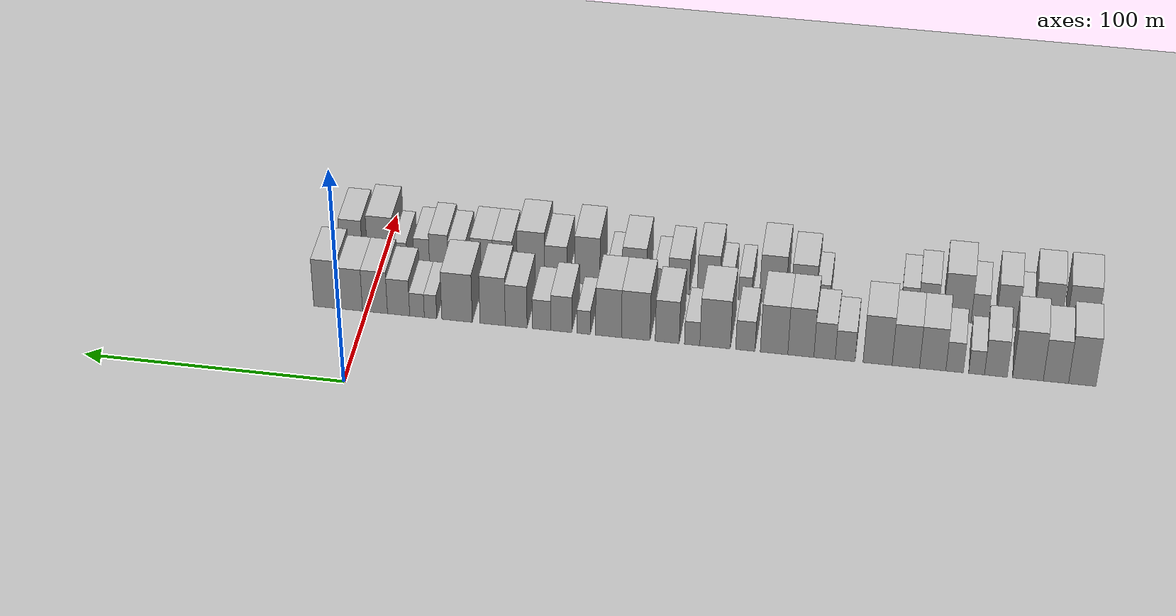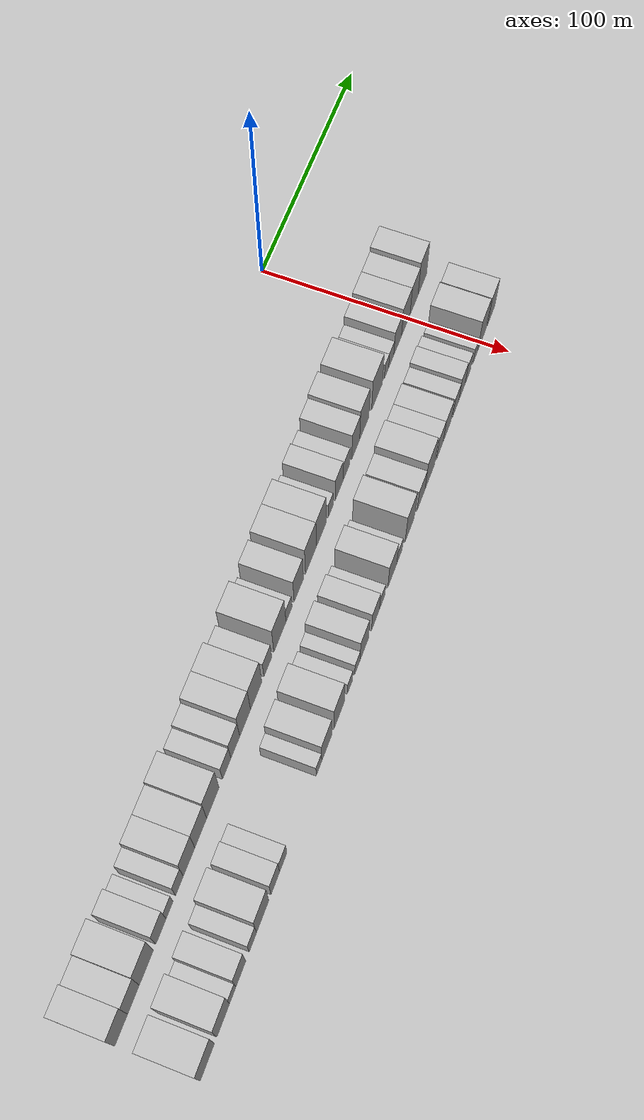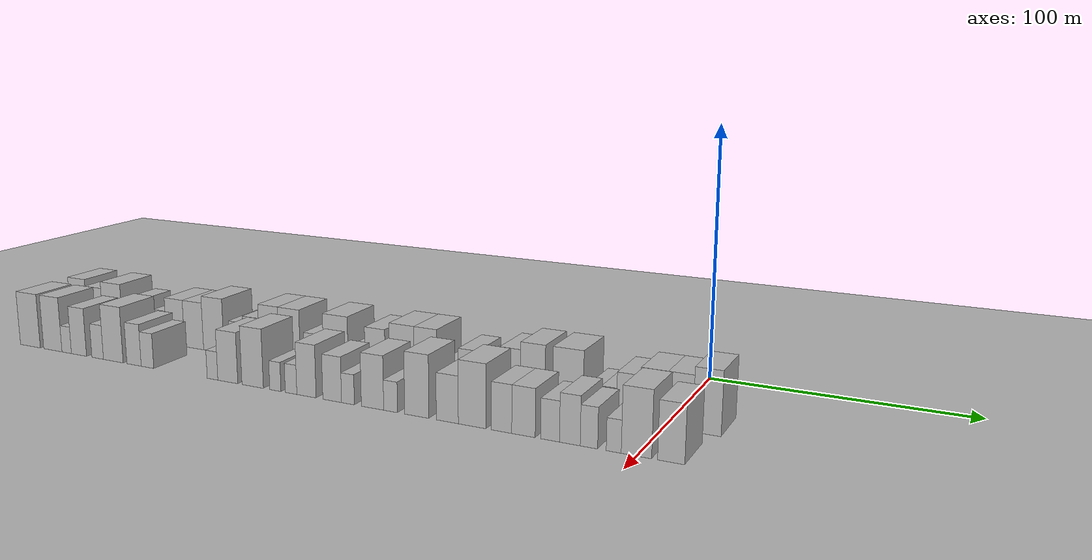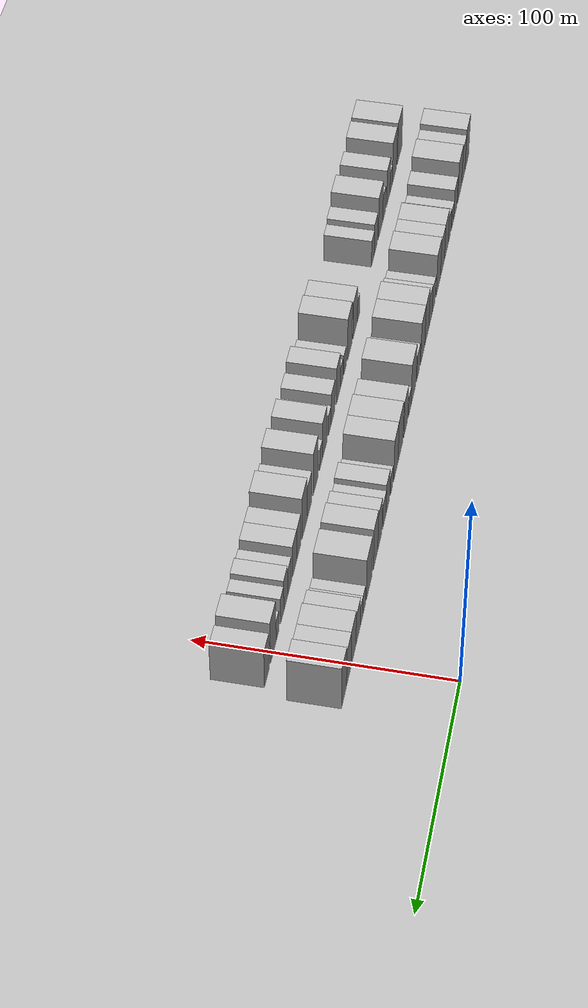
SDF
<sdf version="1.6">
 <world name="default">
  <include><name>ground_plane_1</name><uri>model://HANNAS_ground_plane</uri></include>
  <include>
   <name>ground_plane_2</name>
   <uri>model://HANNAS_ground_plane</uri>
   <pose>100 0 0  0 0 0</pose>
  </include>
  <model name="building_1">
   <static>1</static>
   <pose>50.0000 -272.9200 0 0.000000 0.000000 0.000000</pose>
   <link name="link">
    <pose>0 0 12.00 0 0 0</pose>
    <collision name="collision"><geometry><box><size>20.0000 10.1599 24.0000</size></box></geometry></collision>
    <visual name="visual">
     <cast_shadows>0</cast_shadows>
     <geometry><box><size>20.0000 10.1599 24.0000</size></box></geometry>
     <material>
      <script>
       <uri>model://HANNAS_wall/materials/scripts</uri>
       <uri>model://HANNAS_wall/materials/textures</uri>
       <name>vrc/HANNAS_wall</name>
      </script>
     </material>
    </visual>
   </link>
  </model>
  <model name="building_2">
   <static>1</static>
   <pose>50.0000 -263.1600 0 0.000000 0.000000 0.000000</pose>
   <link name="link">
    <pose>0 0 10.50 0 0 0</pose>
    <collision name="collision"><geometry><box><size>20.0000 9.3602 21.0000</size></box></geometry></collision>
    <visual name="visual">
     <cast_shadows>0</cast_shadows>
     <geometry><box><size>20.0000 9.3602 21.0000</size></box></geometry>
     <material>
      <script>
       <uri>model://HANNAS_wall/materials/scripts</uri>
       <uri>model://HANNAS_wall/materials/textures</uri>
       <name>vrc/HANNAS_wall</name>
      </script>
     </material>
    </visual>
   </link>
  </model>
  <model name="building_3">
   <static>1</static>
   <pose>50.0000 -252.7871 0 0.000000 0.000000 0.000000</pose>
   <link name="link">
    <pose>0 0 12.00 0 0 0</pose>
    <collision name="collision"><geometry><box><size>20.0000 11.3856 24.0000</size></box></geometry></collision>
    <visual name="visual">
     <cast_shadows>0</cast_shadows>
     <geometry><box><size>20.0000 11.3856 24.0000</size></box></geometry>
     <material>
      <script>
       <uri>model://HANNAS_wall/materials/scripts</uri>
       <uri>model://HANNAS_wall/materials/textures</uri>
       <name>vrc/HANNAS_wall</name>
      </script>
     </material>
    </visual>
   </link>
  </model>
  <model name="building_4">
   <static>1</static>
   <pose>50.0000 -240.8640 0 0.000000 0.000000 0.000000</pose>
   <link name="link">
    <pose>0 0 9.00 0 0 0</pose>
    <collision name="collision"><geometry><box><size>20.0000 8.4605 18.0000</size></box></geometry></collision>
    <visual name="visual">
     <cast_shadows>0</cast_shadows>
     <geometry><box><size>20.0000 8.4605 18.0000</size></box></geometry>
     <material>
      <script>
       <uri>model://HANNAS_wall/materials/scripts</uri>
       <uri>model://HANNAS_wall/materials/textures</uri>
       <name>vrc/HANNAS_wall</name>
      </script>
     </material>
    </visual>
   </link>
  </model>
  <model name="building_5">
   <static>1</static>
   <pose>50.0000 -233.6953 0 0.000000 0.000000 0.000000</pose>
   <link name="link">
    <pose>0 0 6.00 0 0 0</pose>
    <collision name="collision"><geometry><box><size>20.0000 5.8770 12.0000</size></box></geometry></collision>
    <visual name="visual">
     <cast_shadows>0</cast_shadows>
     <geometry><box><size>20.0000 5.8770 12.0000</size></box></geometry>
     <material>
      <script>
       <uri>model://HANNAS_wall/materials/scripts</uri>
       <uri>model://HANNAS_wall/materials/textures</uri>
       <name>vrc/HANNAS_wall</name>
      </script>
     </material>
    </visual>
   </link>
  </model>
  <model name="building_6">
   <static>1</static>
   <pose>50.0000 -225.4794 0 0.000000 0.000000 0.000000</pose>
   <link name="link">
    <pose>0 0 7.50 0 0 0</pose>
    <collision name="collision"><geometry><box><size>20.0000 6.5549 15.0000</size></box></geometry></collision>
    <visual name="visual">
     <cast_shadows>0</cast_shadows>
     <geometry><box><size>20.0000 6.5549 15.0000</size></box></geometry>
     <material>
      <script>
       <uri>model://HANNAS_wall/materials/scripts</uri>
       <uri>model://HANNAS_wall/materials/textures</uri>
       <name>vrc/HANNAS_wall</name>
      </script>
     </material>
    </visual>
   </link>
  </model>
  <model name="building_7">
   <static>1</static>
   <pose>50.0000 -217.2844 0 0.000000 0.000000 0.000000</pose>
   <link name="link">
    <pose>0 0 10.50 0 0 0</pose>
    <collision name="collision"><geometry><box><size>20.0000 9.8351 21.0000</size></box></geometry></collision>
    <visual name="visual">
     <cast_shadows>0</cast_shadows>
     <geometry><box><size>20.0000 9.8351 21.0000</size></box></geometry>
     <material>
      <script>
       <uri>model://HANNAS_wall/materials/scripts</uri>
       <uri>model://HANNAS_wall/materials/textures</uri>
       <name>vrc/HANNAS_wall</name>
      </script>
     </material>
    </visual>
   </link>
  </model>
  <model name="building_8">
   <static>1</static>
   <pose>50.0000 -207.2221 0 0.000000 0.000000 0.000000</pose>
   <link name="link">
    <pose>0 0 10.50 0 0 0</pose>
    <collision name="collision"><geometry><box><size>20.0000 10.2895 21.0000</size></box></geometry></collision>
    <visual name="visual">
     <cast_shadows>0</cast_shadows>
     <geometry><box><size>20.0000 10.2895 21.0000</size></box></geometry>
     <material>
      <script>
       <uri>model://HANNAS_wall/materials/scripts</uri>
       <uri>model://HANNAS_wall/materials/textures</uri>
       <name>vrc/HANNAS_wall</name>
      </script>
     </material>
    </visual>
   </link>
  </model>
  <model name="building_9">
   <static>1</static>
   <pose>50.0000 -196.6177 0 0.000000 0.000000 0.000000</pose>
   <link name="link">
    <pose>0 0 12.00 0 0 0</pose>
    <collision name="collision"><geometry><box><size>20.0000 10.9194 24.0000</size></box></geometry></collision>
    <visual name="visual">
     <cast_shadows>0</cast_shadows>
     <geometry><box><size>20.0000 10.9194 24.0000</size></box></geometry>
     <material>
      <script>
       <uri>model://HANNAS_wall/materials/scripts</uri>
       <uri>model://HANNAS_wall/materials/textures</uri>
       <name>vrc/HANNAS_wall</name>
      </script>
     </material>
    </visual>
   </link>
  </model>
  <model name="building_10">
   <static>1</static>
   <pose>50.0000 -184.4147 0 0.000000 0.000000 0.000000</pose>
   <link name="link">
    <pose>0 0 7.50 0 0 0</pose>
    <collision name="collision"><geometry><box><size>20.0000 7.4866 15.0000</size></box></geometry></collision>
    <visual name="visual">
     <cast_shadows>0</cast_shadows>
     <geometry><box><size>20.0000 7.4866 15.0000</size></box></geometry>
     <material>
      <script>
       <uri>model://HANNAS_wall/materials/scripts</uri>
       <uri>model://HANNAS_wall/materials/textures</uri>
       <name>vrc/HANNAS_wall</name>
      </script>
     </material>
    </visual>
   </link>
  </model>
  <model name="building_11">
   <static>1</static>
   <pose>50.0000 -176.6504 0 0.000000 0.000000 0.000000</pose>
   <link name="link">
    <pose>0 0 9.00 0 0 0</pose>
    <collision name="collision"><geometry><box><size>20.0000 8.0421 18.0000</size></box></geometry></collision>
    <visual name="visual">
     <cast_shadows>0</cast_shadows>
     <geometry><box><size>20.0000 8.0421 18.0000</size></box></geometry>
     <material>
      <script>
       <uri>model://HANNAS_wall/materials/scripts</uri>
       <uri>model://HANNAS_wall/materials/textures</uri>
       <name>vrc/HANNAS_wall</name>
      </script>
     </material>
    </visual>
   </link>
  </model>
  <model name="building_12">
   <static>1</static>
   <pose>50.0000 -167.6863 0 0.000000 0.000000 0.000000</pose>
   <link name="link">
    <pose>0 0 12.00 0 0 0</pose>
    <collision name="collision"><geometry><box><size>20.0000 9.8860 24.0000</size></box></geometry></collision>
    <visual name="visual">
     <cast_shadows>0</cast_shadows>
     <geometry><box><size>20.0000 9.8860 24.0000</size></box></geometry>
     <material>
      <script>
       <uri>model://HANNAS_wall/materials/scripts</uri>
       <uri>model://HANNAS_wall/materials/textures</uri>
       <name>vrc/HANNAS_wall</name>
      </script>
     </material>
    </visual>
   </link>
  </model>
  <model name="building_13">
   <static>1</static>
   <pose>50.0000 -157.5218 0 0.000000 0.000000 0.000000</pose>
   <link name="link">
    <pose>0 0 12.00 0 0 0</pose>
    <collision name="collision"><geometry><box><size>20.0000 10.4430 24.0000</size></box></geometry></collision>
    <visual name="visual">
     <cast_shadows>0</cast_shadows>
     <geometry><box><size>20.0000 10.4430 24.0000</size></box></geometry>
     <material>
      <script>
       <uri>model://HANNAS_wall/materials/scripts</uri>
       <uri>model://HANNAS_wall/materials/textures</uri>
       <name>vrc/HANNAS_wall</name>
      </script>
     </material>
    </visual>
   </link>
  </model>
  <model name="building_14">
   <static>1</static>
   <pose>50.0000 -146.6202 0 0.000000 0.000000 0.000000</pose>
   <link name="link">
    <pose>0 0 7.50 0 0 0</pose>
    <collision name="collision"><geometry><box><size>20.0000 7.3601 15.0000</size></box></geometry></collision>
    <visual name="visual">
     <cast_shadows>0</cast_shadows>
     <geometry><box><size>20.0000 7.3601 15.0000</size></box></geometry>
     <material>
      <script>
       <uri>model://HANNAS_wall/materials/scripts</uri>
       <uri>model://HANNAS_wall/materials/textures</uri>
       <name>vrc/HANNAS_wall</name>
      </script>
     </material>
    </visual>
   </link>
  </model>
  <model name="building_15">
   <static>1</static>
   <pose>50.0000 -135.1217 0 0.000000 0.000000 0.000000</pose>
   <link name="link">
    <pose>0 0 12.00 0 0 0</pose>
    <collision name="collision"><geometry><box><size>20.0000 11.6370 24.0000</size></box></geometry></collision>
    <visual name="visual">
     <cast_shadows>0</cast_shadows>
     <geometry><box><size>20.0000 11.6370 24.0000</size></box></geometry>
     <material>
      <script>
       <uri>model://HANNAS_wall/materials/scripts</uri>
       <uri>model://HANNAS_wall/materials/textures</uri>
       <name>vrc/HANNAS_wall</name>
      </script>
     </material>
    </visual>
   </link>
  </model>
  <model name="building_16">
   <static>1</static>
   <pose>50.0000 -126.3583 0 0.000000 0.000000 0.000000</pose>
   <link name="link">
    <pose>0 0 6.00 0 0 0</pose>
    <collision name="collision"><geometry><box><size>20.0000 5.8898 12.0000</size></box></geometry></collision>
    <visual name="visual">
     <cast_shadows>0</cast_shadows>
     <geometry><box><size>20.0000 5.8898 12.0000</size></box></geometry>
     <material>
      <script>
       <uri>model://HANNAS_wall/materials/scripts</uri>
       <uri>model://HANNAS_wall/materials/textures</uri>
       <name>vrc/HANNAS_wall</name>
      </script>
     </material>
    </visual>
   </link>
  </model>
  <model name="building_17">
   <static>1</static>
   <pose>50.0000 -116.8223 0 0.000000 0.000000 0.000000</pose>
   <link name="link">
    <pose>0 0 10.50 0 0 0</pose>
    <collision name="collision"><geometry><box><size>20.0000 9.1821 21.0000</size></box></geometry></collision>
    <visual name="visual">
     <cast_shadows>0</cast_shadows>
     <geometry><box><size>20.0000 9.1821 21.0000</size></box></geometry>
     <material>
      <script>
       <uri>model://HANNAS_wall/materials/scripts</uri>
       <uri>model://HANNAS_wall/materials/textures</uri>
       <name>vrc/HANNAS_wall</name>
      </script>
     </material>
    </visual>
   </link>
  </model>
  <model name="building_18">
   <static>1</static>
   <pose>50.0000 -104.7328 0 0.000000 0.000000 0.000000</pose>
   <link name="link">
    <pose>0 0 12.00 0 0 0</pose>
    <collision name="collision"><geometry><box><size>20.0000 10.9970 24.0000</size></box></geometry></collision>
    <visual name="visual">
     <cast_shadows>0</cast_shadows>
     <geometry><box><size>20.0000 10.9970 24.0000</size></box></geometry>
     <material>
      <script>
       <uri>model://HANNAS_wall/materials/scripts</uri>
       <uri>model://HANNAS_wall/materials/textures</uri>
       <name>vrc/HANNAS_wall</name>
      </script>
     </material>
    </visual>
   </link>
  </model>
  <model name="building_19">
   <static>1</static>
   <pose>50.0000 -94.2725 0 0.000000 0.000000 0.000000</pose>
   <link name="link">
    <pose>0 0 12.00 0 0 0</pose>
    <collision name="collision"><geometry><box><size>20.0000 9.9236 24.0000</size></box></geometry></collision>
    <visual name="visual">
     <cast_shadows>0</cast_shadows>
     <geometry><box><size>20.0000 9.9236 24.0000</size></box></geometry>
     <material>
      <script>
       <uri>model://HANNAS_wall/materials/scripts</uri>
       <uri>model://HANNAS_wall/materials/textures</uri>
       <name>vrc/HANNAS_wall</name>
      </script>
     </material>
    </visual>
   </link>
  </model>
  <model name="building_20">
   <static>1</static>
   <pose>50.0000 -84.7162 0 0.000000 0.000000 0.000000</pose>
   <link name="link">
    <pose>0 0 6.00 0 0 0</pose>
    <collision name="collision"><geometry><box><size>20.0000 5.1888 12.0000</size></box></geometry></collision>
    <visual name="visual">
     <cast_shadows>0</cast_shadows>
     <geometry><box><size>20.0000 5.1888 12.0000</size></box></geometry>
     <material>
      <script>
       <uri>model://HANNAS_wall/materials/scripts</uri>
       <uri>model://HANNAS_wall/materials/textures</uri>
       <name>vrc/HANNAS_wall</name>
      </script>
     </material>
    </visual>
   </link>
  </model>
  <model name="building_21">
   <static>1</static>
   <pose>50.0000 -76.0519 0 0.000000 0.000000 0.000000</pose>
   <link name="link">
    <pose>0 0 9.00 0 0 0</pose>
    <collision name="collision"><geometry><box><size>20.0000 8.1398 18.0000</size></box></geometry></collision>
    <visual name="visual">
     <cast_shadows>0</cast_shadows>
     <geometry><box><size>20.0000 8.1398 18.0000</size></box></geometry>
     <material>
      <script>
       <uri>model://HANNAS_wall/materials/scripts</uri>
       <uri>model://HANNAS_wall/materials/textures</uri>
       <name>vrc/HANNAS_wall</name>
      </script>
     </material>
    </visual>
   </link>
  </model>
  <model name="building_22">
   <static>1</static>
   <pose>50.0000 -68.4234 0 0.000000 0.000000 0.000000</pose>
   <link name="link">
    <pose>0 0 7.50 0 0 0</pose>
    <collision name="collision"><geometry><box><size>20.0000 7.1172 15.0000</size></box></geometry></collision>
    <visual name="visual">
     <cast_shadows>0</cast_shadows>
     <geometry><box><size>20.0000 7.1172 15.0000</size></box></geometry>
     <material>
      <script>
       <uri>model://HANNAS_wall/materials/scripts</uri>
       <uri>model://HANNAS_wall/materials/textures</uri>
       <name>vrc/HANNAS_wall</name>
      </script>
     </material>
    </visual>
   </link>
  </model>
  <model name="building_23">
   <static>1</static>
   <pose>50.0000 -58.6308 0 0.000000 0.000000 0.000000</pose>
   <link name="link">
    <pose>0 0 10.50 0 0 0</pose>
    <collision name="collision"><geometry><box><size>20.0000 8.4679 21.0000</size></box></geometry></collision>
    <visual name="visual">
     <cast_shadows>0</cast_shadows>
     <geometry><box><size>20.0000 8.4679 21.0000</size></box></geometry>
     <material>
      <script>
       <uri>model://HANNAS_wall/materials/scripts</uri>
       <uri>model://HANNAS_wall/materials/textures</uri>
       <name>vrc/HANNAS_wall</name>
      </script>
     </material>
    </visual>
   </link>
  </model>
  <model name="building_24">
   <static>1</static>
   <pose>50.0000 -49.4877 0 0.000000 0.000000 0.000000</pose>
   <link name="link">
    <pose>0 0 12.00 0 0 0</pose>
    <collision name="collision"><geometry><box><size>20.0000 9.8183 24.0000</size></box></geometry></collision>
    <visual name="visual">
     <cast_shadows>0</cast_shadows>
     <geometry><box><size>20.0000 9.8183 24.0000</size></box></geometry>
     <material>
      <script>
       <uri>model://HANNAS_wall/materials/scripts</uri>
       <uri>model://HANNAS_wall/materials/textures</uri>
       <name>vrc/HANNAS_wall</name>
      </script>
     </material>
    </visual>
   </link>
  </model>
  <model name="building_25">
   <static>1</static>
   <pose>50.0000 -35.6482 0 0.000000 0.000000 0.000000</pose>
   <link name="link">
    <pose>0 0 12.00 0 0 0</pose>
    <collision name="collision"><geometry><box><size>20.0000 11.8606 24.0000</size></box></geometry></collision>
    <visual name="visual">
     <cast_shadows>0</cast_shadows>
     <geometry><box><size>20.0000 11.8606 24.0000</size></box></geometry>
     <material>
      <script>
       <uri>model://HANNAS_wall/materials/scripts</uri>
       <uri>model://HANNAS_wall/materials/textures</uri>
       <name>vrc/HANNAS_wall</name>
      </script>
     </material>
    </visual>
   </link>
  </model>
  <model name="building_26">
   <static>1</static>
   <pose>50.0000 -25.2976 0 0.000000 0.000000 0.000000</pose>
   <link name="link">
    <pose>0 0 6.00 0 0 0</pose>
    <collision name="collision"><geometry><box><size>20.0000 4.8406 12.0000</size></box></geometry></collision>
    <visual name="visual">
     <cast_shadows>0</cast_shadows>
     <geometry><box><size>20.0000 4.8406 12.0000</size></box></geometry>
     <material>
      <script>
       <uri>model://HANNAS_wall/materials/scripts</uri>
       <uri>model://HANNAS_wall/materials/textures</uri>
       <name>vrc/HANNAS_wall</name>
      </script>
     </material>
    </visual>
   </link>
  </model>
  <model name="building_27">
   <static>1</static>
   <pose>50.0000 -20.0082 0 0.000000 0.000000 0.000000</pose>
   <link name="link">
    <pose>0 0 6.00 0 0 0</pose>
    <collision name="collision"><geometry><box><size>20.0000 5.7383 12.0000</size></box></geometry></collision>
    <visual name="visual">
     <cast_shadows>0</cast_shadows>
     <geometry><box><size>20.0000 5.7383 12.0000</size></box></geometry>
     <material>
      <script>
       <uri>model://HANNAS_wall/materials/scripts</uri>
       <uri>model://HANNAS_wall/materials/textures</uri>
       <name>vrc/HANNAS_wall</name>
      </script>
     </material>
    </visual>
   </link>
  </model>
  <model name="building_28">
   <static>1</static>
   <pose>50.0000 -12.7895 0 0.000000 0.000000 0.000000</pose>
   <link name="link">
    <pose>0 0 9.00 0 0 0</pose>
    <collision name="collision"><geometry><box><size>20.0000 8.6990 18.0000</size></box></geometry></collision>
    <visual name="visual">
     <cast_shadows>0</cast_shadows>
     <geometry><box><size>20.0000 8.6990 18.0000</size></box></geometry>
     <material>
      <script>
       <uri>model://HANNAS_wall/materials/scripts</uri>
       <uri>model://HANNAS_wall/materials/textures</uri>
       <name>vrc/HANNAS_wall</name>
      </script>
     </material>
    </visual>
   </link>
  </model>
  <model name="building_29">
   <static>1</static>
   <pose>50.0000 -3.5440 0 0.000000 0.000000 0.000000</pose>
   <link name="link">
    <pose>0 0 10.50 0 0 0</pose>
    <collision name="collision"><geometry><box><size>20.0000 9.7920 21.0000</size></box></geometry></collision>
    <visual name="visual">
     <cast_shadows>0</cast_shadows>
     <geometry><box><size>20.0000 9.7920 21.0000</size></box></geometry>
     <material>
      <script>
       <uri>model://HANNAS_wall/materials/scripts</uri>
       <uri>model://HANNAS_wall/materials/textures</uri>
       <name>vrc/HANNAS_wall</name>
      </script>
     </material>
    </visual>
   </link>
  </model>
  <model name="building_30">
   <static>1</static>
   <pose>50.0000 5.9721 0 0.000000 0.000000 0.000000</pose>
   <link name="link">
    <pose>0 0 10.50 0 0 0</pose>
    <collision name="collision"><geometry><box><size>20.0000 9.2402 21.0000</size></box></geometry></collision>
    <visual name="visual">
     <cast_shadows>0</cast_shadows>
     <geometry><box><size>20.0000 9.2402 21.0000</size></box></geometry>
     <material>
      <script>
       <uri>model://HANNAS_wall/materials/scripts</uri>
       <uri>model://HANNAS_wall/materials/textures</uri>
       <name>vrc/HANNAS_wall</name>
      </script>
     </material>
    </visual>
   </link>
  </model>
  <model name="building_31">
   <static>1</static>
   <pose>50.0000 15.5483 0 0.000000 0.000000 0.000000</pose>
   <link name="link">
    <pose>0 0 12.00 0 0 0</pose>
    <collision name="collision"><geometry><box><size>20.0000 9.9122 24.0000</size></box></geometry></collision>
    <visual name="visual">
     <cast_shadows>0</cast_shadows>
     <geometry><box><size>20.0000 9.9122 24.0000</size></box></geometry>
     <material>
      <script>
       <uri>model://HANNAS_wall/materials/scripts</uri>
       <uri>model://HANNAS_wall/materials/textures</uri>
       <name>vrc/HANNAS_wall</name>
      </script>
     </material>
    </visual>
   </link>
  </model>
  <model name="building_60">
   <static>1</static>
   <pose>79.0000 -272.1253 0 0.000000 0.000000 0.000000</pose>
   <link name="link">
    <pose>0 0 12.00 0 0 0</pose>
    <collision name="collision"><geometry><box><size>20.0000 11.7493 24.0000</size></box></geometry></collision>
    <visual name="visual">
     <cast_shadows>0</cast_shadows>
     <geometry><box><size>20.0000 11.7493 24.0000</size></box></geometry>
     <material>
      <script>
       <uri>model://HANNAS_wall/materials/scripts</uri>
       <uri>model://HANNAS_wall/materials/textures</uri>
       <name>vrc/HANNAS_wall</name>
      </script>
     </material>
    </visual>
   </link>
  </model>
  <model name="building_61">
   <static>1</static>
   <pose>79.0000 -258.9659 0 0.000000 0.000000 0.000000</pose>
   <link name="link">
    <pose>0 0 12.00 0 0 0</pose>
    <collision name="collision"><geometry><box><size>20.0000 10.5695 24.0000</size></box></geometry></collision>
    <visual name="visual">
     <cast_shadows>0</cast_shadows>
     <geometry><box><size>20.0000 10.5695 24.0000</size></box></geometry>
     <material>
      <script>
       <uri>model://HANNAS_wall/materials/scripts</uri>
       <uri>model://HANNAS_wall/materials/textures</uri>
       <name>vrc/HANNAS_wall</name>
      </script>
     </material>
    </visual>
   </link>
  </model>
  <model name="building_62">
   <static>1</static>
   <pose>79.0000 -250.9826 0 0.000000 0.000000 0.000000</pose>
   <link name="link">
    <pose>0 0 6.00 0 0 0</pose>
    <collision name="collision"><geometry><box><size>20.0000 5.3971 12.0000</size></box></geometry></collision>
    <visual name="visual">
     <cast_shadows>0</cast_shadows>
     <geometry><box><size>20.0000 5.3971 12.0000</size></box></geometry>
     <material>
      <script>
       <uri>model://HANNAS_wall/materials/scripts</uri>
       <uri>model://HANNAS_wall/materials/textures</uri>
       <name>vrc/HANNAS_wall</name>
      </script>
     </material>
    </visual>
   </link>
  </model>
  <model name="building_63">
   <static>1</static>
   <pose>79.0000 -244.0172 0 0.000000 0.000000 0.000000</pose>
   <link name="link">
    <pose>0 0 10.50 0 0 0</pose>
    <collision name="collision"><geometry><box><size>20.0000 8.5337 21.0000</size></box></geometry></collision>
    <visual name="visual">
     <cast_shadows>0</cast_shadows>
     <geometry><box><size>20.0000 8.5337 21.0000</size></box></geometry>
     <material>
      <script>
       <uri>model://HANNAS_wall/materials/scripts</uri>
       <uri>model://HANNAS_wall/materials/textures</uri>
       <name>vrc/HANNAS_wall</name>
      </script>
     </material>
    </visual>
   </link>
  </model>
  <model name="building_64">
   <static>1</static>
   <pose>79.0000 -233.5608 0 0.000000 0.000000 0.000000</pose>
   <link name="link">
    <pose>0 0 7.50 0 0 0</pose>
    <collision name="collision"><geometry><box><size>20.0000 6.3792 15.0000</size></box></geometry></collision>
    <visual name="visual">
     <cast_shadows>0</cast_shadows>
     <geometry><box><size>20.0000 6.3792 15.0000</size></box></geometry>
     <material>
      <script>
       <uri>model://HANNAS_wall/materials/scripts</uri>
       <uri>model://HANNAS_wall/materials/textures</uri>
       <name>vrc/HANNAS_wall</name>
      </script>
     </material>
    </visual>
   </link>
  </model>
  <model name="building_65">
   <static>1</static>
   <pose>79.0000 -225.0048 0 0.000000 0.000000 0.000000</pose>
   <link name="link">
    <pose>0 0 12.00 0 0 0</pose>
    <collision name="collision"><geometry><box><size>20.0000 10.7326 24.0000</size></box></geometry></collision>
    <visual name="visual">
     <cast_shadows>0</cast_shadows>
     <geometry><box><size>20.0000 10.7326 24.0000</size></box></geometry>
     <material>
      <script>
       <uri>model://HANNAS_wall/materials/scripts</uri>
       <uri>model://HANNAS_wall/materials/textures</uri>
       <name>vrc/HANNAS_wall</name>
      </script>
     </material>
    </visual>
   </link>
  </model>
  <model name="building_66">
   <static>1</static>
   <pose>79.0000 -213.8214 0 0.000000 0.000000 0.000000</pose>
   <link name="link">
    <pose>0 0 9.00 0 0 0</pose>
    <collision name="collision"><geometry><box><size>20.0000 7.6342 18.0000</size></box></geometry></collision>
    <visual name="visual">
     <cast_shadows>0</cast_shadows>
     <geometry><box><size>20.0000 7.6342 18.0000</size></box></geometry>
     <material>
      <script>
       <uri>model://HANNAS_wall/materials/scripts</uri>
       <uri>model://HANNAS_wall/materials/textures</uri>
       <name>vrc/HANNAS_wall</name>
      </script>
     </material>
    </visual>
   </link>
  </model>
  <model name="building_67">
   <static>1</static>
   <pose>79.0000 -206.6983 0 0.000000 0.000000 0.000000</pose>
   <link name="link">
    <pose>0 0 7.50 0 0 0</pose>
    <collision name="collision"><geometry><box><size>20.0000 6.6121 15.0000</size></box></geometry></collision>
    <visual name="visual">
     <cast_shadows>0</cast_shadows>
     <geometry><box><size>20.0000 6.6121 15.0000</size></box></geometry>
     <material>
      <script>
       <uri>model://HANNAS_wall/materials/scripts</uri>
       <uri>model://HANNAS_wall/materials/textures</uri>
       <name>vrc/HANNAS_wall</name>
      </script>
     </material>
    </visual>
   </link>
  </model>
  <model name="building_68">
   <static>1</static>
   <pose>79.0000 -173.5323 0 0.000000 0.000000 0.000000</pose>
   <link name="link">
    <pose>0 0 6.00 0 0 0</pose>
    <collision name="collision"><geometry><box><size>20.0000 5.2399 12.0000</size></box></geometry></collision>
    <visual name="visual">
     <cast_shadows>0</cast_shadows>
     <geometry><box><size>20.0000 5.2399 12.0000</size></box></geometry>
     <material>
      <script>
       <uri>model://HANNAS_wall/materials/scripts</uri>
       <uri>model://HANNAS_wall/materials/textures</uri>
       <name>vrc/HANNAS_wall</name>
      </script>
     </material>
    </visual>
   </link>
  </model>
  <model name="building_69">
   <static>1</static>
   <pose>79.0000 -166.0524 0 0.000000 0.000000 0.000000</pose>
   <link name="link">
    <pose>0 0 10.50 0 0 0</pose>
    <collision name="collision"><geometry><box><size>20.0000 9.7199 21.0000</size></box></geometry></collision>
    <visual name="visual">
     <cast_shadows>0</cast_shadows>
     <geometry><box><size>20.0000 9.7199 21.0000</size></box></geometry>
     <material>
      <script>
       <uri>model://HANNAS_wall/materials/scripts</uri>
       <uri>model://HANNAS_wall/materials/textures</uri>
       <name>vrc/HANNAS_wall</name>
      </script>
     </material>
    </visual>
   </link>
  </model>
  <model name="building_70">
   <static>1</static>
   <pose>79.0000 -154.1022 0 0.000000 0.000000 0.000000</pose>
   <link name="link">
    <pose>0 0 12.00 0 0 0</pose>
    <collision name="collision"><geometry><box><size>20.0000 10.1805 24.0000</size></box></geometry></collision>
    <visual name="visual">
     <cast_shadows>0</cast_shadows>
     <geometry><box><size>20.0000 10.1805 24.0000</size></box></geometry>
     <material>
      <script>
       <uri>model://HANNAS_wall/materials/scripts</uri>
       <uri>model://HANNAS_wall/materials/textures</uri>
       <name>vrc/HANNAS_wall</name>
      </script>
     </material>
    </visual>
   </link>
  </model>
  <model name="building_71">
   <static>1</static>
   <pose>79.0000 -143.4146 0 0.000000 0.000000 0.000000</pose>
   <link name="link">
    <pose>0 0 6.00 0 0 0</pose>
    <collision name="collision"><geometry><box><size>20.0000 5.1947 12.0000</size></box></geometry></collision>
    <visual name="visual">
     <cast_shadows>0</cast_shadows>
     <geometry><box><size>20.0000 5.1947 12.0000</size></box></geometry>
     <material>
      <script>
       <uri>model://HANNAS_wall/materials/scripts</uri>
       <uri>model://HANNAS_wall/materials/textures</uri>
       <name>vrc/HANNAS_wall</name>
      </script>
     </material>
    </visual>
   </link>
  </model>
  <model name="building_72">
   <static>1</static>
   <pose>79.0000 -136.1674 0 0.000000 0.000000 0.000000</pose>
   <link name="link">
    <pose>0 0 6.00 0 0 0</pose>
    <collision name="collision"><geometry><box><size>20.0000 5.2996 12.0000</size></box></geometry></collision>
    <visual name="visual">
     <cast_shadows>0</cast_shadows>
     <geometry><box><size>20.0000 5.2996 12.0000</size></box></geometry>
     <material>
      <script>
       <uri>model://HANNAS_wall/materials/scripts</uri>
       <uri>model://HANNAS_wall/materials/textures</uri>
       <name>vrc/HANNAS_wall</name>
      </script>
     </material>
    </visual>
   </link>
  </model>
  <model name="building_73">
   <static>1</static>
   <pose>79.0000 -129.1591 0 0.000000 0.000000 0.000000</pose>
   <link name="link">
    <pose>0 0 10.50 0 0 0</pose>
    <collision name="collision"><geometry><box><size>20.0000 8.7171 21.0000</size></box></geometry></collision>
    <visual name="visual">
     <cast_shadows>0</cast_shadows>
     <geometry><box><size>20.0000 8.7171 21.0000</size></box></geometry>
     <material>
      <script>
       <uri>model://HANNAS_wall/materials/scripts</uri>
       <uri>model://HANNAS_wall/materials/textures</uri>
       <name>vrc/HANNAS_wall</name>
      </script>
     </material>
    </visual>
   </link>
  </model>
  <model name="building_74">
   <static>1</static>
   <pose>79.0000 -117.6692 0 0.000000 0.000000 0.000000</pose>
   <link name="link">
    <pose>0 0 9.00 0 0 0</pose>
    <collision name="collision"><geometry><box><size>20.0000 8.2627 18.0000</size></box></geometry></collision>
    <visual name="visual">
     <cast_shadows>0</cast_shadows>
     <geometry><box><size>20.0000 8.2627 18.0000</size></box></geometry>
     <material>
      <script>
       <uri>model://HANNAS_wall/materials/scripts</uri>
       <uri>model://HANNAS_wall/materials/textures</uri>
       <name>vrc/HANNAS_wall</name>
      </script>
     </material>
    </visual>
   </link>
  </model>
  <model name="building_75">
   <static>1</static>
   <pose>79.0000 -110.7485 0 0.000000 0.000000 0.000000</pose>
   <link name="link">
    <pose>0 0 6.00 0 0 0</pose>
    <collision name="collision"><geometry><box><size>20.0000 5.5786 12.0000</size></box></geometry></collision>
    <visual name="visual">
     <cast_shadows>0</cast_shadows>
     <geometry><box><size>20.0000 5.5786 12.0000</size></box></geometry>
     <material>
      <script>
       <uri>model://HANNAS_wall/materials/scripts</uri>
       <uri>model://HANNAS_wall/materials/textures</uri>
       <name>vrc/HANNAS_wall</name>
      </script>
     </material>
    </visual>
   </link>
  </model>
  <model name="building_76">
   <static>1</static>
   <pose>79.0000 -100.2103 0 0.000000 0.000000 0.000000</pose>
   <link name="link">
    <pose>0 0 10.50 0 0 0</pose>
    <collision name="collision"><geometry><box><size>20.0000 9.4979 21.0000</size></box></geometry></collision>
    <visual name="visual">
     <cast_shadows>0</cast_shadows>
     <geometry><box><size>20.0000 9.4979 21.0000</size></box></geometry>
     <material>
      <script>
       <uri>model://HANNAS_wall/materials/scripts</uri>
       <uri>model://HANNAS_wall/materials/textures</uri>
       <name>vrc/HANNAS_wall</name>
      </script>
     </material>
    </visual>
   </link>
  </model>
  <model name="building_77">
   <static>1</static>
   <pose>79.0000 -92.5706 0 0.000000 0.000000 0.000000</pose>
   <link name="link">
    <pose>0 0 6.00 0 0 0</pose>
    <collision name="collision"><geometry><box><size>20.0000 5.7816 12.0000</size></box></geometry></collision>
    <visual name="visual">
     <cast_shadows>0</cast_shadows>
     <geometry><box><size>20.0000 5.7816 12.0000</size></box></geometry>
     <material>
      <script>
       <uri>model://HANNAS_wall/materials/scripts</uri>
       <uri>model://HANNAS_wall/materials/textures</uri>
       <name>vrc/HANNAS_wall</name>
      </script>
     </material>
    </visual>
   </link>
  </model>
  <model name="building_78">
   <static>1</static>
   <pose>79.0000 -81.7338 0 0.000000 0.000000 0.000000</pose>
   <link name="link">
    <pose>0 0 12.00 0 0 0</pose>
    <collision name="collision"><geometry><box><size>20.0000 9.8919 24.0000</size></box></geometry></collision>
    <visual name="visual">
     <cast_shadows>0</cast_shadows>
     <geometry><box><size>20.0000 9.8919 24.0000</size></box></geometry>
     <material>
      <script>
       <uri>model://HANNAS_wall/materials/scripts</uri>
       <uri>model://HANNAS_wall/materials/textures</uri>
       <name>vrc/HANNAS_wall</name>
      </script>
     </material>
    </visual>
   </link>
  </model>
  <model name="building_79">
   <static>1</static>
   <pose>79.0000 -69.3966 0 0.000000 0.000000 0.000000</pose>
   <link name="link">
    <pose>0 0 9.00 0 0 0</pose>
    <collision name="collision"><geometry><box><size>20.0000 8.7825 18.0000</size></box></geometry></collision>
    <visual name="visual">
     <cast_shadows>0</cast_shadows>
     <geometry><box><size>20.0000 8.7825 18.0000</size></box></geometry>
     <material>
      <script>
       <uri>model://HANNAS_wall/materials/scripts</uri>
       <uri>model://HANNAS_wall/materials/textures</uri>
       <name>vrc/HANNAS_wall</name>
      </script>
     </material>
    </visual>
   </link>
  </model>
  <model name="building_80">
   <static>1</static>
   <pose>79.0000 -59.5940 0 0.000000 0.000000 0.000000</pose>
   <link name="link">
    <pose>0 0 12.00 0 0 0</pose>
    <collision name="collision"><geometry><box><size>20.0000 10.8228 24.0000</size></box></geometry></collision>
    <visual name="visual">
     <cast_shadows>0</cast_shadows>
     <geometry><box><size>20.0000 10.8228 24.0000</size></box></geometry>
     <material>
      <script>
       <uri>model://HANNAS_wall/materials/scripts</uri>
       <uri>model://HANNAS_wall/materials/textures</uri>
       <name>vrc/HANNAS_wall</name>
      </script>
     </material>
    </visual>
   </link>
  </model>
  <model name="building_81">
   <static>1</static>
   <pose>79.0000 -48.2941 0 0.000000 0.000000 0.000000</pose>
   <link name="link">
    <pose>0 0 9.00 0 0 0</pose>
    <collision name="collision"><geometry><box><size>20.0000 7.7771 18.0000</size></box></geometry></collision>
    <visual name="visual">
     <cast_shadows>0</cast_shadows>
     <geometry><box><size>20.0000 7.7771 18.0000</size></box></geometry>
     <material>
      <script>
       <uri>model://HANNAS_wall/materials/scripts</uri>
       <uri>model://HANNAS_wall/materials/textures</uri>
       <name>vrc/HANNAS_wall</name>
      </script>
     </material>
    </visual>
   </link>
  </model>
  <model name="building_82">
   <static>1</static>
   <pose>79.0000 -40.0190 0 0.000000 0.000000 0.000000</pose>
   <link name="link">
    <pose>0 0 9.00 0 0 0</pose>
    <collision name="collision"><geometry><box><size>20.0000 8.7730 18.0000</size></box></geometry></collision>
    <visual name="visual">
     <cast_shadows>0</cast_shadows>
     <geometry><box><size>20.0000 8.7730 18.0000</size></box></geometry>
     <material>
      <script>
       <uri>model://HANNAS_wall/materials/scripts</uri>
       <uri>model://HANNAS_wall/materials/textures</uri>
       <name>vrc/HANNAS_wall</name>
      </script>
     </material>
    </visual>
   </link>
  </model>
  <model name="building_83">
   <static>1</static>
   <pose>79.0000 -30.1879 0 0.000000 0.000000 0.000000</pose>
   <link name="link">
    <pose>0 0 7.50 0 0 0</pose>
    <collision name="collision"><geometry><box><size>20.0000 6.8894 15.0000</size></box></geometry></collision>
    <visual name="visual">
     <cast_shadows>0</cast_shadows>
     <geometry><box><size>20.0000 6.8894 15.0000</size></box></geometry>
     <material>
      <script>
       <uri>model://HANNAS_wall/materials/scripts</uri>
       <uri>model://HANNAS_wall/materials/textures</uri>
       <name>vrc/HANNAS_wall</name>
      </script>
     </material>
    </visual>
   </link>
  </model>
  <model name="building_84">
   <static>1</static>
   <pose>79.0000 -23.0122 0 0.000000 0.000000 0.000000</pose>
   <link name="link">
    <pose>0 0 9.00 0 0 0</pose>
    <collision name="collision"><geometry><box><size>20.0000 7.4620 18.0000</size></box></geometry></collision>
    <visual name="visual">
     <cast_shadows>0</cast_shadows>
     <geometry><box><size>20.0000 7.4620 18.0000</size></box></geometry>
     <material>
      <script>
       <uri>model://HANNAS_wall/materials/scripts</uri>
       <uri>model://HANNAS_wall/materials/textures</uri>
       <name>vrc/HANNAS_wall</name>
      </script>
     </material>
    </visual>
   </link>
  </model>
  <model name="building_85">
   <static>1</static>
   <pose>79.0000 -16.1955 0 0.000000 0.000000 0.000000</pose>
   <link name="link">
    <pose>0 0 7.50 0 0 0</pose>
    <collision name="collision"><geometry><box><size>20.0000 6.1713 15.0000</size></box></geometry></collision>
    <visual name="visual">
     <cast_shadows>0</cast_shadows>
     <geometry><box><size>20.0000 6.1713 15.0000</size></box></geometry>
     <material>
      <script>
       <uri>model://HANNAS_wall/materials/scripts</uri>
       <uri>model://HANNAS_wall/materials/textures</uri>
       <name>vrc/HANNAS_wall</name>
      </script>
     </material>
    </visual>
   </link>
  </model>
  <model name="building_86">
   <static>1</static>
   <pose>79.0000 -7.5090 0 0.000000 0.000000 0.000000</pose>
   <link name="link">
    <pose>0 0 6.00 0 0 0</pose>
    <collision name="collision"><geometry><box><size>20.0000 5.2017 12.0000</size></box></geometry></collision>
    <visual name="visual">
     <cast_shadows>0</cast_shadows>
     <geometry><box><size>20.0000 5.2017 12.0000</size></box></geometry>
     <material>
      <script>
       <uri>model://HANNAS_wall/materials/scripts</uri>
       <uri>model://HANNAS_wall/materials/textures</uri>
       <name>vrc/HANNAS_wall</name>
      </script>
     </material>
    </visual>
   </link>
  </model>
  <model name="building_87">
   <static>1</static>
   <pose>79.0000 0.2787 0 0.000000 0.000000 0.000000</pose>
   <link name="link">
    <pose>0 0 12.00 0 0 0</pose>
    <collision name="collision"><geometry><box><size>20.0000 10.3739 24.0000</size></box></geometry></collision>
    <visual name="visual">
     <cast_shadows>0</cast_shadows>
     <geometry><box><size>20.0000 10.3739 24.0000</size></box></geometry>
     <material>
      <script>
       <uri>model://HANNAS_wall/materials/scripts</uri>
       <uri>model://HANNAS_wall/materials/textures</uri>
       <name>vrc/HANNAS_wall</name>
      </script>
     </material>
    </visual>
   </link>
  </model>
  <model name="building_88">
   <static>1</static>
   <pose>79.0000 11.9833 0 0.000000 0.000000 0.000000</pose>
   <link name="link">
    <pose>0 0 10.50 0 0 0</pose>
    <collision name="collision"><geometry><box><size>20.0000 9.0353 21.0000</size></box></geometry></collision>
    <visual name="visual">
     <cast_shadows>0</cast_shadows>
     <geometry><box><size>20.0000 9.0353 21.0000</size></box></geometry>
     <material>
      <script>
       <uri>model://HANNAS_wall/materials/scripts</uri>
       <uri>model://HANNAS_wall/materials/textures</uri>
       <name>vrc/HANNAS_wall</name>
      </script>
     </material>
    </visual>
   </link>
  </model>
 </world>
</sdf>
